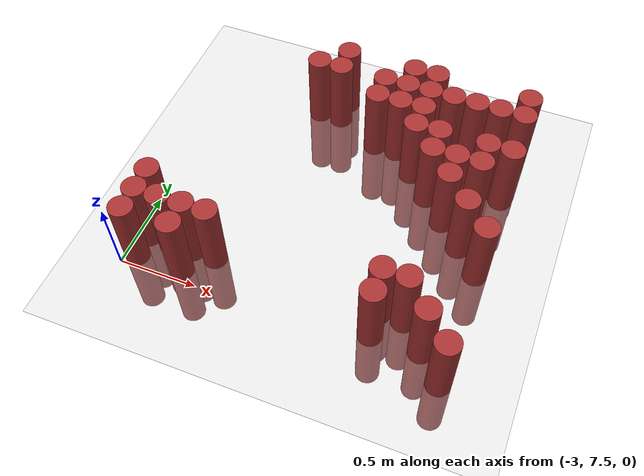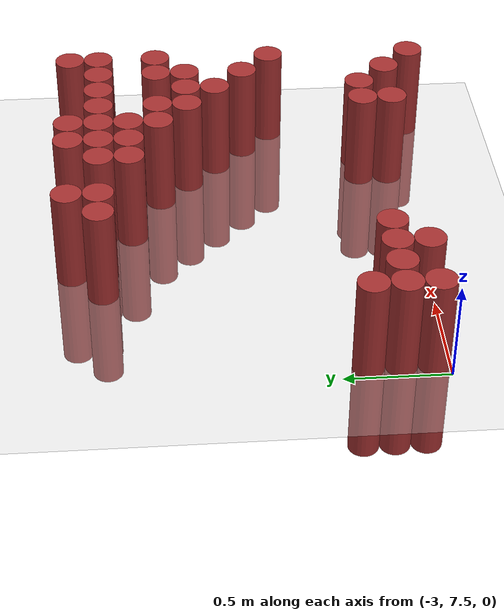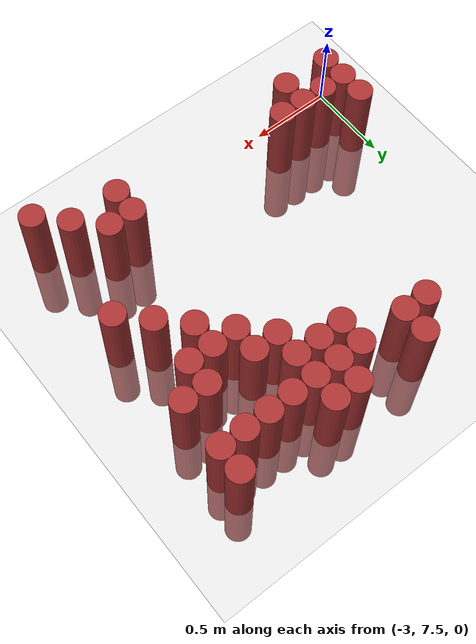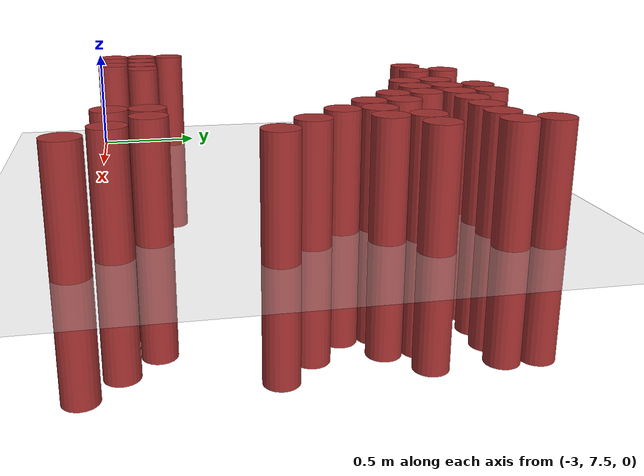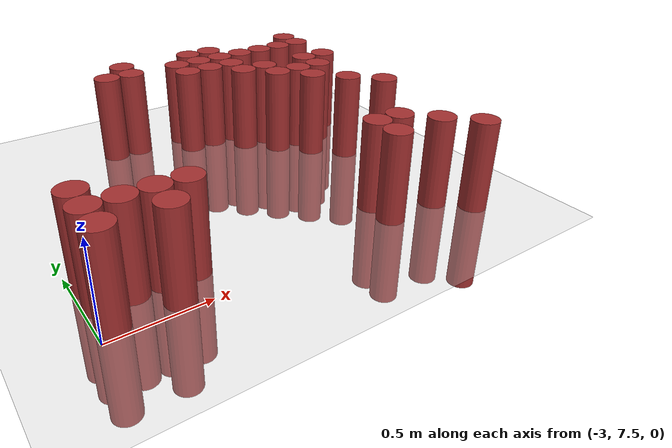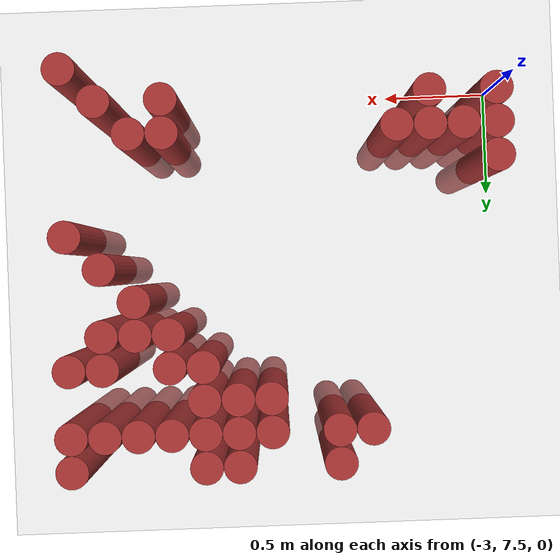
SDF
<sdf version="1.6">
 <world name="default">
  <model name="ground_plane">
   <static>1</static>
   <link name="link">
    <collision name="collision">
     <geometry><plane><normal>0 0 1</normal><size>100 100</size></plane></geometry>
     <surface><friction><ode><mu>100</mu><mu2>50</mu2></ode></friction></surface>
    </collision>
    <visual name="visual">
     <cast_shadows>0</cast_shadows>
     <geometry><plane><normal>0 0 1</normal><size>100 100</size></plane></geometry>
     <material>
      <script><uri>file://media/materials/scripts/gazebo.material</uri><name>Gazebo/Grey</name></script>
     </material>
    </visual>
   </link>
  </model>
  <model name="unit_cylinder_199">
   <static>1</static>
   <pose>-2.925000 7.575000 0.000000 0.000000 0.000000 0.000000</pose>
   <link name="link">
    <inertial>
     <mass>1</mass>
     <inertia><ixx>0.145833</ixx><ixy>0</ixy><ixz>0</ixz><iyy>0.145833</iyy><iyz>0</iyz><izz>0.125</izz></inertia>
    </inertial>
    <collision name="collision">
     <geometry><cylinder><radius>0.075000</radius><length>1</length></cylinder></geometry>
    </collision>
    <visual name="visual">
     <geometry><cylinder><radius>0.075000</radius><length>1</length></cylinder></geometry>
     <material>
      <ambient>0.648000 0.192000 0.192000 1</ambient>
      <diffuse>0.648000 0.192000 0.192000 1</diffuse>
     </material>
     <material>
      <script><name>Gazebo/Grey</name><uri>file://media/materials/scripts/gazebo.material</uri></script>
     </material>
    </visual>
    <sensor name="sensor_contact" type="contact"><contact><collision>collision</collision></contact></sensor>
   </link>
   <plugin filename="gz-sim-touchplugin-system" name="gz::sim::systems::TouchPlugin">
    <target>robot</target>
    <namespace>robot</namespace>
    <time>0.001</time>
    <enabled>true</enabled>
   </plugin>
  </model>
  <model name="unit_cylinder_200">
   <static>1</static>
   <pose>-2.925000 7.725000 0.000000 0.000000 0.000000 0.000000</pose>
   <link name="link">
    <inertial>
     <mass>1</mass>
     <inertia><ixx>0.145833</ixx><ixy>0</ixy><ixz>0</ixz><iyy>0.145833</iyy><iyz>0</iyz><izz>0.125</izz></inertia>
    </inertial>
    <collision name="collision">
     <geometry><cylinder><radius>0.075000</radius><length>1</length></cylinder></geometry>
    </collision>
    <visual name="visual">
     <geometry><cylinder><radius>0.075000</radius><length>1</length></cylinder></geometry>
     <material>
      <ambient>0.648000 0.192000 0.192000 1</ambient>
      <diffuse>0.648000 0.192000 0.192000 1</diffuse>
     </material>
     <material>
      <script><name>Gazebo/Grey</name><uri>file://media/materials/scripts/gazebo.material</uri></script>
     </material>
    </visual>
    <sensor name="sensor_contact" type="contact"><contact><collision>collision</collision></contact></sensor>
   </link>
   <plugin filename="gz-sim-touchplugin-system" name="gz::sim::systems::TouchPlugin">
    <target>robot</target>
    <namespace>robot</namespace>
    <time>0.001</time>
    <enabled>true</enabled>
   </plugin>
  </model>
  <model name="unit_cylinder_201">
   <static>1</static>
   <pose>-2.925000 7.875000 0.000000 0.000000 0.000000 0.000000</pose>
   <link name="link">
    <inertial>
     <mass>1</mass>
     <inertia><ixx>0.145833</ixx><ixy>0</ixy><ixz>0</ixz><iyy>0.145833</iyy><iyz>0</iyz><izz>0.125</izz></inertia>
    </inertial>
    <collision name="collision">
     <geometry><cylinder><radius>0.075000</radius><length>1</length></cylinder></geometry>
    </collision>
    <visual name="visual">
     <geometry><cylinder><radius>0.075000</radius><length>1</length></cylinder></geometry>
     <material>
      <ambient>0.648000 0.192000 0.192000 1</ambient>
      <diffuse>0.648000 0.192000 0.192000 1</diffuse>
     </material>
     <material>
      <script><name>Gazebo/Grey</name><uri>file://media/materials/scripts/gazebo.material</uri></script>
     </material>
    </visual>
    <sensor name="sensor_contact" type="contact"><contact><collision>collision</collision></contact></sensor>
   </link>
   <plugin filename="gz-sim-touchplugin-system" name="gz::sim::systems::TouchPlugin">
    <target>robot</target>
    <namespace>robot</namespace>
    <time>0.001</time>
    <enabled>true</enabled>
   </plugin>
  </model>
  <model name="unit_cylinder_208">
   <static>1</static>
   <pose>-2.775000 7.725000 0.000000 0.000000 0.000000 0.000000</pose>
   <link name="link">
    <inertial>
     <mass>1</mass>
     <inertia><ixx>0.145833</ixx><ixy>0</ixy><ixz>0</ixz><iyy>0.145833</iyy><iyz>0</iyz><izz>0.125</izz></inertia>
    </inertial>
    <collision name="collision">
     <geometry><cylinder><radius>0.075000</radius><length>1</length></cylinder></geometry>
    </collision>
    <visual name="visual">
     <geometry><cylinder><radius>0.075000</radius><length>1</length></cylinder></geometry>
     <material>
      <ambient>0.648000 0.192000 0.192000 1</ambient>
      <diffuse>0.648000 0.192000 0.192000 1</diffuse>
     </material>
     <material>
      <script><name>Gazebo/Grey</name><uri>file://media/materials/scripts/gazebo.material</uri></script>
     </material>
    </visual>
    <sensor name="sensor_contact" type="contact"><contact><collision>collision</collision></contact></sensor>
   </link>
   <plugin filename="gz-sim-touchplugin-system" name="gz::sim::systems::TouchPlugin">
    <target>robot</target>
    <namespace>robot</namespace>
    <time>0.001</time>
    <enabled>true</enabled>
   </plugin>
  </model>
  <model name="unit_cylinder_211">
   <static>1</static>
   <pose>-2.625000 7.575000 0.000000 0.000000 0.000000 0.000000</pose>
   <link name="link">
    <inertial>
     <mass>1</mass>
     <inertia><ixx>0.145833</ixx><ixy>0</ixy><ixz>0</ixz><iyy>0.145833</iyy><iyz>0</iyz><izz>0.125</izz></inertia>
    </inertial>
    <collision name="collision">
     <geometry><cylinder><radius>0.075000</radius><length>1</length></cylinder></geometry>
    </collision>
    <visual name="visual">
     <geometry><cylinder><radius>0.075000</radius><length>1</length></cylinder></geometry>
     <material>
      <ambient>0.648000 0.192000 0.192000 1</ambient>
      <diffuse>0.648000 0.192000 0.192000 1</diffuse>
     </material>
     <material>
      <script><name>Gazebo/Grey</name><uri>file://media/materials/scripts/gazebo.material</uri></script>
     </material>
    </visual>
    <sensor name="sensor_contact" type="contact"><contact><collision>collision</collision></contact></sensor>
   </link>
   <plugin filename="gz-sim-touchplugin-system" name="gz::sim::systems::TouchPlugin">
    <target>robot</target>
    <namespace>robot</namespace>
    <time>0.001</time>
    <enabled>true</enabled>
   </plugin>
  </model>
  <model name="unit_cylinder_212">
   <static>1</static>
   <pose>-2.625000 7.725000 0.000000 0.000000 0.000000 0.000000</pose>
   <link name="link">
    <inertial>
     <mass>1</mass>
     <inertia><ixx>0.145833</ixx><ixy>0</ixy><ixz>0</ixz><iyy>0.145833</iyy><iyz>0</iyz><izz>0.125</izz></inertia>
    </inertial>
    <collision name="collision">
     <geometry><cylinder><radius>0.075000</radius><length>1</length></cylinder></geometry>
    </collision>
    <visual name="visual">
     <geometry><cylinder><radius>0.075000</radius><length>1</length></cylinder></geometry>
     <material>
      <ambient>0.648000 0.192000 0.192000 1</ambient>
      <diffuse>0.648000 0.192000 0.192000 1</diffuse>
     </material>
     <material>
      <script><name>Gazebo/Grey</name><uri>file://media/materials/scripts/gazebo.material</uri></script>
     </material>
    </visual>
    <sensor name="sensor_contact" type="contact"><contact><collision>collision</collision></contact></sensor>
   </link>
   <plugin filename="gz-sim-touchplugin-system" name="gz::sim::systems::TouchPlugin">
    <target>robot</target>
    <namespace>robot</namespace>
    <time>0.001</time>
    <enabled>true</enabled>
   </plugin>
  </model>
  <model name="unit_cylinder_215">
   <static>1</static>
   <pose>-2.475000 7.725000 0.000000 0.000000 0.000000 0.000000</pose>
   <link name="link">
    <inertial>
     <mass>1</mass>
     <inertia><ixx>0.145833</ixx><ixy>0</ixy><ixz>0</ixz><iyy>0.145833</iyy><iyz>0</iyz><izz>0.125</izz></inertia>
    </inertial>
    <collision name="collision">
     <geometry><cylinder><radius>0.075000</radius><length>1</length></cylinder></geometry>
    </collision>
    <visual name="visual">
     <geometry><cylinder><radius>0.075000</radius><length>1</length></cylinder></geometry>
     <material>
      <ambient>0.648000 0.192000 0.192000 1</ambient>
      <diffuse>0.648000 0.192000 0.192000 1</diffuse>
     </material>
     <material>
      <script><name>Gazebo/Grey</name><uri>file://media/materials/scripts/gazebo.material</uri></script>
     </material>
    </visual>
    <sensor name="sensor_contact" type="contact"><contact><collision>collision</collision></contact></sensor>
   </link>
   <plugin filename="gz-sim-touchplugin-system" name="gz::sim::systems::TouchPlugin">
    <target>robot</target>
    <namespace>robot</namespace>
    <time>0.001</time>
    <enabled>true</enabled>
   </plugin>
  </model>
  <model name="unit_cylinder_217">
   <static>1</static>
   <pose>-2.325000 9.075000 0.000000 0.000000 0.000000 0.000000</pose>
   <link name="link">
    <inertial>
     <mass>1</mass>
     <inertia><ixx>0.145833</ixx><ixy>0</ixy><ixz>0</ixz><iyy>0.145833</iyy><iyz>0</iyz><izz>0.125</izz></inertia>
    </inertial>
    <collision name="collision">
     <geometry><cylinder><radius>0.075000</radius><length>1</length></cylinder></geometry>
    </collision>
    <visual name="visual">
     <geometry><cylinder><radius>0.075000</radius><length>1</length></cylinder></geometry>
     <material>
      <ambient>0.648000 0.192000 0.192000 1</ambient>
      <diffuse>0.648000 0.192000 0.192000 1</diffuse>
     </material>
     <material>
      <script><name>Gazebo/Grey</name><uri>file://media/materials/scripts/gazebo.material</uri></script>
     </material>
    </visual>
    <sensor name="sensor_contact" type="contact"><contact><collision>collision</collision></contact></sensor>
   </link>
   <plugin filename="gz-sim-touchplugin-system" name="gz::sim::systems::TouchPlugin">
    <target>robot</target>
    <namespace>robot</namespace>
    <time>0.001</time>
    <enabled>true</enabled>
   </plugin>
  </model>
  <model name="unit_cylinder_218">
   <static>1</static>
   <pose>-2.175000 9.075000 0.000000 0.000000 0.000000 0.000000</pose>
   <link name="link">
    <inertial>
     <mass>1</mass>
     <inertia><ixx>0.145833</ixx><ixy>0</ixy><ixz>0</ixz><iyy>0.145833</iyy><iyz>0</iyz><izz>0.125</izz></inertia>
    </inertial>
    <collision name="collision">
     <geometry><cylinder><radius>0.075000</radius><length>1</length></cylinder></geometry>
    </collision>
    <visual name="visual">
     <geometry><cylinder><radius>0.075000</radius><length>1</length></cylinder></geometry>
     <material>
      <ambient>0.648000 0.192000 0.192000 1</ambient>
      <diffuse>0.648000 0.192000 0.192000 1</diffuse>
     </material>
     <material>
      <script><name>Gazebo/Grey</name><uri>file://media/materials/scripts/gazebo.material</uri></script>
     </material>
    </visual>
    <sensor name="sensor_contact" type="contact"><contact><collision>collision</collision></contact></sensor>
   </link>
   <plugin filename="gz-sim-touchplugin-system" name="gz::sim::systems::TouchPlugin">
    <target>robot</target>
    <namespace>robot</namespace>
    <time>0.001</time>
    <enabled>true</enabled>
   </plugin>
  </model>
  <model name="unit_cylinder_219">
   <static>1</static>
   <pose>-2.175000 9.225000 0.000000 0.000000 0.000000 0.000000</pose>
   <link name="link">
    <inertial>
     <mass>1</mass>
     <inertia><ixx>0.145833</ixx><ixy>0</ixy><ixz>0</ixz><iyy>0.145833</iyy><iyz>0</iyz><izz>0.125</izz></inertia>
    </inertial>
    <collision name="collision">
     <geometry><cylinder><radius>0.075000</radius><length>1</length></cylinder></geometry>
    </collision>
    <visual name="visual">
     <geometry><cylinder><radius>0.075000</radius><length>1</length></cylinder></geometry>
     <material>
      <ambient>0.648000 0.192000 0.192000 1</ambient>
      <diffuse>0.648000 0.192000 0.192000 1</diffuse>
     </material>
     <material>
      <script><name>Gazebo/Grey</name><uri>file://media/materials/scripts/gazebo.material</uri></script>
     </material>
    </visual>
    <sensor name="sensor_contact" type="contact"><contact><collision>collision</collision></contact></sensor>
   </link>
   <plugin filename="gz-sim-touchplugin-system" name="gz::sim::systems::TouchPlugin">
    <target>robot</target>
    <namespace>robot</namespace>
    <time>0.001</time>
    <enabled>true</enabled>
   </plugin>
  </model>
  <model name="unit_cylinder_220">
   <static>1</static>
   <pose>-1.875000 8.925000 0.000000 0.000000 0.000000 0.000000</pose>
   <link name="link">
    <inertial>
     <mass>1</mass>
     <inertia><ixx>0.145833</ixx><ixy>0</ixy><ixz>0</ixz><iyy>0.145833</iyy><iyz>0</iyz><izz>0.125</izz></inertia>
    </inertial>
    <collision name="collision">
     <geometry><cylinder><radius>0.075000</radius><length>1</length></cylinder></geometry>
    </collision>
    <visual name="visual">
     <geometry><cylinder><radius>0.075000</radius><length>1</length></cylinder></geometry>
     <material>
      <ambient>0.648000 0.192000 0.192000 1</ambient>
      <diffuse>0.648000 0.192000 0.192000 1</diffuse>
     </material>
     <material>
      <script><name>Gazebo/Grey</name><uri>file://media/materials/scripts/gazebo.material</uri></script>
     </material>
    </visual>
    <sensor name="sensor_contact" type="contact"><contact><collision>collision</collision></contact></sensor>
   </link>
   <plugin filename="gz-sim-touchplugin-system" name="gz::sim::systems::TouchPlugin">
    <target>robot</target>
    <namespace>robot</namespace>
    <time>0.001</time>
    <enabled>true</enabled>
   </plugin>
  </model>
  <model name="unit_cylinder_221">
   <static>1</static>
   <pose>-1.875000 9.075000 0.000000 0.000000 0.000000 0.000000</pose>
   <link name="link">
    <inertial>
     <mass>1</mass>
     <inertia><ixx>0.145833</ixx><ixy>0</ixy><ixz>0</ixz><iyy>0.145833</iyy><iyz>0</iyz><izz>0.125</izz></inertia>
    </inertial>
    <collision name="collision">
     <geometry><cylinder><radius>0.075000</radius><length>1</length></cylinder></geometry>
    </collision>
    <visual name="visual">
     <geometry><cylinder><radius>0.075000</radius><length>1</length></cylinder></geometry>
     <material>
      <ambient>0.648000 0.192000 0.192000 1</ambient>
      <diffuse>0.648000 0.192000 0.192000 1</diffuse>
     </material>
     <material>
      <script><name>Gazebo/Grey</name><uri>file://media/materials/scripts/gazebo.material</uri></script>
     </material>
    </visual>
    <sensor name="sensor_contact" type="contact"><contact><collision>collision</collision></contact></sensor>
   </link>
   <plugin filename="gz-sim-touchplugin-system" name="gz::sim::systems::TouchPlugin">
    <target>robot</target>
    <namespace>robot</namespace>
    <time>0.001</time>
    <enabled>true</enabled>
   </plugin>
  </model>
  <model name="unit_cylinder_222">
   <static>1</static>
   <pose>-1.725000 8.925000 0.000000 0.000000 0.000000 0.000000</pose>
   <link name="link">
    <inertial>
     <mass>1</mass>
     <inertia><ixx>0.145833</ixx><ixy>0</ixy><ixz>0</ixz><iyy>0.145833</iyy><iyz>0</iyz><izz>0.125</izz></inertia>
    </inertial>
    <collision name="collision">
     <geometry><cylinder><radius>0.075000</radius><length>1</length></cylinder></geometry>
    </collision>
    <visual name="visual">
     <geometry><cylinder><radius>0.075000</radius><length>1</length></cylinder></geometry>
     <material>
      <ambient>0.648000 0.192000 0.192000 1</ambient>
      <diffuse>0.648000 0.192000 0.192000 1</diffuse>
     </material>
     <material>
      <script><name>Gazebo/Grey</name><uri>file://media/materials/scripts/gazebo.material</uri></script>
     </material>
    </visual>
    <sensor name="sensor_contact" type="contact"><contact><collision>collision</collision></contact></sensor>
   </link>
   <plugin filename="gz-sim-touchplugin-system" name="gz::sim::systems::TouchPlugin">
    <target>robot</target>
    <namespace>robot</namespace>
    <time>0.001</time>
    <enabled>true</enabled>
   </plugin>
  </model>
  <model name="unit_cylinder_223">
   <static>1</static>
   <pose>-1.725000 9.075000 0.000000 0.000000 0.000000 0.000000</pose>
   <link name="link">
    <inertial>
     <mass>1</mass>
     <inertia><ixx>0.145833</ixx><ixy>0</ixy><ixz>0</ixz><iyy>0.145833</iyy><iyz>0</iyz><izz>0.125</izz></inertia>
    </inertial>
    <collision name="collision">
     <geometry><cylinder><radius>0.075000</radius><length>1</length></cylinder></geometry>
    </collision>
    <visual name="visual">
     <geometry><cylinder><radius>0.075000</radius><length>1</length></cylinder></geometry>
     <material>
      <ambient>0.648000 0.192000 0.192000 1</ambient>
      <diffuse>0.648000 0.192000 0.192000 1</diffuse>
     </material>
     <material>
      <script><name>Gazebo/Grey</name><uri>file://media/materials/scripts/gazebo.material</uri></script>
     </material>
    </visual>
    <sensor name="sensor_contact" type="contact"><contact><collision>collision</collision></contact></sensor>
   </link>
   <plugin filename="gz-sim-touchplugin-system" name="gz::sim::systems::TouchPlugin">
    <target>robot</target>
    <namespace>robot</namespace>
    <time>0.001</time>
    <enabled>true</enabled>
   </plugin>
  </model>
  <model name="unit_cylinder_224">
   <static>1</static>
   <pose>-1.725000 9.225000 0.000000 0.000000 0.000000 0.000000</pose>
   <link name="link">
    <inertial>
     <mass>1</mass>
     <inertia><ixx>0.145833</ixx><ixy>0</ixy><ixz>0</ixz><iyy>0.145833</iyy><iyz>0</iyz><izz>0.125</izz></inertia>
    </inertial>
    <collision name="collision">
     <geometry><cylinder><radius>0.075000</radius><length>1</length></cylinder></geometry>
    </collision>
    <visual name="visual">
     <geometry><cylinder><radius>0.075000</radius><length>1</length></cylinder></geometry>
     <material>
      <ambient>0.648000 0.192000 0.192000 1</ambient>
      <diffuse>0.648000 0.192000 0.192000 1</diffuse>
     </material>
     <material>
      <script><name>Gazebo/Grey</name><uri>file://media/materials/scripts/gazebo.material</uri></script>
     </material>
    </visual>
    <sensor name="sensor_contact" type="contact"><contact><collision>collision</collision></contact></sensor>
   </link>
   <plugin filename="gz-sim-touchplugin-system" name="gz::sim::systems::TouchPlugin">
    <target>robot</target>
    <namespace>robot</namespace>
    <time>0.001</time>
    <enabled>true</enabled>
   </plugin>
  </model>
  <model name="unit_cylinder_225">
   <static>1</static>
   <pose>-1.575000 8.775000 0.000000 0.000000 0.000000 0.000000</pose>
   <link name="link">
    <inertial>
     <mass>1</mass>
     <inertia><ixx>0.145833</ixx><ixy>0</ixy><ixz>0</ixz><iyy>0.145833</iyy><iyz>0</iyz><izz>0.125</izz></inertia>
    </inertial>
    <collision name="collision">
     <geometry><cylinder><radius>0.075000</radius><length>1</length></cylinder></geometry>
    </collision>
    <visual name="visual">
     <geometry><cylinder><radius>0.075000</radius><length>1</length></cylinder></geometry>
     <material>
      <ambient>0.648000 0.192000 0.192000 1</ambient>
      <diffuse>0.648000 0.192000 0.192000 1</diffuse>
     </material>
     <material>
      <script><name>Gazebo/Grey</name><uri>file://media/materials/scripts/gazebo.material</uri></script>
     </material>
    </visual>
    <sensor name="sensor_contact" type="contact"><contact><collision>collision</collision></contact></sensor>
   </link>
   <plugin filename="gz-sim-touchplugin-system" name="gz::sim::systems::TouchPlugin">
    <target>robot</target>
    <namespace>robot</namespace>
    <time>0.001</time>
    <enabled>true</enabled>
   </plugin>
  </model>
  <model name="unit_cylinder_226">
   <static>1</static>
   <pose>-1.575000 8.925000 0.000000 0.000000 0.000000 0.000000</pose>
   <link name="link">
    <inertial>
     <mass>1</mass>
     <inertia><ixx>0.145833</ixx><ixy>0</ixy><ixz>0</ixz><iyy>0.145833</iyy><iyz>0</iyz><izz>0.125</izz></inertia>
    </inertial>
    <collision name="collision">
     <geometry><cylinder><radius>0.075000</radius><length>1</length></cylinder></geometry>
    </collision>
    <visual name="visual">
     <geometry><cylinder><radius>0.075000</radius><length>1</length></cylinder></geometry>
     <material>
      <ambient>0.648000 0.192000 0.192000 1</ambient>
      <diffuse>0.648000 0.192000 0.192000 1</diffuse>
     </material>
     <material>
      <script><name>Gazebo/Grey</name><uri>file://media/materials/scripts/gazebo.material</uri></script>
     </material>
    </visual>
    <sensor name="sensor_contact" type="contact"><contact><collision>collision</collision></contact></sensor>
   </link>
   <plugin filename="gz-sim-touchplugin-system" name="gz::sim::systems::TouchPlugin">
    <target>robot</target>
    <namespace>robot</namespace>
    <time>0.001</time>
    <enabled>true</enabled>
   </plugin>
  </model>
  <model name="unit_cylinder_227">
   <static>1</static>
   <pose>-1.575000 9.075000 0.000000 0.000000 0.000000 0.000000</pose>
   <link name="link">
    <inertial>
     <mass>1</mass>
     <inertia><ixx>0.145833</ixx><ixy>0</ixy><ixz>0</ixz><iyy>0.145833</iyy><iyz>0</iyz><izz>0.125</izz></inertia>
    </inertial>
    <collision name="collision">
     <geometry><cylinder><radius>0.075000</radius><length>1</length></cylinder></geometry>
    </collision>
    <visual name="visual">
     <geometry><cylinder><radius>0.075000</radius><length>1</length></cylinder></geometry>
     <material>
      <ambient>0.648000 0.192000 0.192000 1</ambient>
      <diffuse>0.648000 0.192000 0.192000 1</diffuse>
     </material>
     <material>
      <script><name>Gazebo/Grey</name><uri>file://media/materials/scripts/gazebo.material</uri></script>
     </material>
    </visual>
    <sensor name="sensor_contact" type="contact"><contact><collision>collision</collision></contact></sensor>
   </link>
   <plugin filename="gz-sim-touchplugin-system" name="gz::sim::systems::TouchPlugin">
    <target>robot</target>
    <namespace>robot</namespace>
    <time>0.001</time>
    <enabled>true</enabled>
   </plugin>
  </model>
  <model name="unit_cylinder_228">
   <static>1</static>
   <pose>-1.575000 9.225000 0.000000 0.000000 0.000000 0.000000</pose>
   <link name="link">
    <inertial>
     <mass>1</mass>
     <inertia><ixx>0.145833</ixx><ixy>0</ixy><ixz>0</ixz><iyy>0.145833</iyy><iyz>0</iyz><izz>0.125</izz></inertia>
    </inertial>
    <collision name="collision">
     <geometry><cylinder><radius>0.075000</radius><length>1</length></cylinder></geometry>
    </collision>
    <visual name="visual">
     <geometry><cylinder><radius>0.075000</radius><length>1</length></cylinder></geometry>
     <material>
      <ambient>0.648000 0.192000 0.192000 1</ambient>
      <diffuse>0.648000 0.192000 0.192000 1</diffuse>
     </material>
     <material>
      <script><name>Gazebo/Grey</name><uri>file://media/materials/scripts/gazebo.material</uri></script>
     </material>
    </visual>
    <sensor name="sensor_contact" type="contact"><contact><collision>collision</collision></contact></sensor>
   </link>
   <plugin filename="gz-sim-touchplugin-system" name="gz::sim::systems::TouchPlugin">
    <target>robot</target>
    <namespace>robot</namespace>
    <time>0.001</time>
    <enabled>true</enabled>
   </plugin>
  </model>
  <model name="unit_cylinder_232">
   <static>1</static>
   <pose>-1.425000 7.575000 0.000000 0.000000 0.000000 0.000000</pose>
   <link name="link">
    <inertial>
     <mass>1</mass>
     <inertia><ixx>0.145833</ixx><ixy>0</ixy><ixz>0</ixz><iyy>0.145833</iyy><iyz>0</iyz><izz>0.125</izz></inertia>
    </inertial>
    <collision name="collision">
     <geometry><cylinder><radius>0.075000</radius><length>1</length></cylinder></geometry>
    </collision>
    <visual name="visual">
     <geometry><cylinder><radius>0.075000</radius><length>1</length></cylinder></geometry>
     <material>
      <ambient>0.648000 0.192000 0.192000 1</ambient>
      <diffuse>0.648000 0.192000 0.192000 1</diffuse>
     </material>
     <material>
      <script><name>Gazebo/Grey</name><uri>file://media/materials/scripts/gazebo.material</uri></script>
     </material>
    </visual>
    <sensor name="sensor_contact" type="contact"><contact><collision>collision</collision></contact></sensor>
   </link>
   <plugin filename="gz-sim-touchplugin-system" name="gz::sim::systems::TouchPlugin">
    <target>robot</target>
    <namespace>robot</namespace>
    <time>0.001</time>
    <enabled>true</enabled>
   </plugin>
  </model>
  <model name="unit_cylinder_233">
   <static>1</static>
   <pose>-1.425000 7.725000 0.000000 0.000000 0.000000 0.000000</pose>
   <link name="link">
    <inertial>
     <mass>1</mass>
     <inertia><ixx>0.145833</ixx><ixy>0</ixy><ixz>0</ixz><iyy>0.145833</iyy><iyz>0</iyz><izz>0.125</izz></inertia>
    </inertial>
    <collision name="collision">
     <geometry><cylinder><radius>0.075000</radius><length>1</length></cylinder></geometry>
    </collision>
    <visual name="visual">
     <geometry><cylinder><radius>0.075000</radius><length>1</length></cylinder></geometry>
     <material>
      <ambient>0.648000 0.192000 0.192000 1</ambient>
      <diffuse>0.648000 0.192000 0.192000 1</diffuse>
     </material>
     <material>
      <script><name>Gazebo/Grey</name><uri>file://media/materials/scripts/gazebo.material</uri></script>
     </material>
    </visual>
    <sensor name="sensor_contact" type="contact"><contact><collision>collision</collision></contact></sensor>
   </link>
   <plugin filename="gz-sim-touchplugin-system" name="gz::sim::systems::TouchPlugin">
    <target>robot</target>
    <namespace>robot</namespace>
    <time>0.001</time>
    <enabled>true</enabled>
   </plugin>
  </model>
  <model name="unit_cylinder_234">
   <static>1</static>
   <pose>-1.425000 8.625000 0.000000 0.000000 0.000000 0.000000</pose>
   <link name="link">
    <inertial>
     <mass>1</mass>
     <inertia><ixx>0.145833</ixx><ixy>0</ixy><ixz>0</ixz><iyy>0.145833</iyy><iyz>0</iyz><izz>0.125</izz></inertia>
    </inertial>
    <collision name="collision">
     <geometry><cylinder><radius>0.075000</radius><length>1</length></cylinder></geometry>
    </collision>
    <visual name="visual">
     <geometry><cylinder><radius>0.075000</radius><length>1</length></cylinder></geometry>
     <material>
      <ambient>0.648000 0.192000 0.192000 1</ambient>
      <diffuse>0.648000 0.192000 0.192000 1</diffuse>
     </material>
     <material>
      <script><name>Gazebo/Grey</name><uri>file://media/materials/scripts/gazebo.material</uri></script>
     </material>
    </visual>
    <sensor name="sensor_contact" type="contact"><contact><collision>collision</collision></contact></sensor>
   </link>
   <plugin filename="gz-sim-touchplugin-system" name="gz::sim::systems::TouchPlugin">
    <target>robot</target>
    <namespace>robot</namespace>
    <time>0.001</time>
    <enabled>true</enabled>
   </plugin>
  </model>
  <model name="unit_cylinder_235">
   <static>1</static>
   <pose>-1.425000 8.775000 0.000000 0.000000 0.000000 0.000000</pose>
   <link name="link">
    <inertial>
     <mass>1</mass>
     <inertia><ixx>0.145833</ixx><ixy>0</ixy><ixz>0</ixz><iyy>0.145833</iyy><iyz>0</iyz><izz>0.125</izz></inertia>
    </inertial>
    <collision name="collision">
     <geometry><cylinder><radius>0.075000</radius><length>1</length></cylinder></geometry>
    </collision>
    <visual name="visual">
     <geometry><cylinder><radius>0.075000</radius><length>1</length></cylinder></geometry>
     <material>
      <ambient>0.648000 0.192000 0.192000 1</ambient>
      <diffuse>0.648000 0.192000 0.192000 1</diffuse>
     </material>
     <material>
      <script><name>Gazebo/Grey</name><uri>file://media/materials/scripts/gazebo.material</uri></script>
     </material>
    </visual>
    <sensor name="sensor_contact" type="contact"><contact><collision>collision</collision></contact></sensor>
   </link>
   <plugin filename="gz-sim-touchplugin-system" name="gz::sim::systems::TouchPlugin">
    <target>robot</target>
    <namespace>robot</namespace>
    <time>0.001</time>
    <enabled>true</enabled>
   </plugin>
  </model>
  <model name="unit_cylinder_236">
   <static>1</static>
   <pose>-1.425000 9.075000 0.000000 0.000000 0.000000 0.000000</pose>
   <link name="link">
    <inertial>
     <mass>1</mass>
     <inertia><ixx>0.145833</ixx><ixy>0</ixy><ixz>0</ixz><iyy>0.145833</iyy><iyz>0</iyz><izz>0.125</izz></inertia>
    </inertial>
    <collision name="collision">
     <geometry><cylinder><radius>0.075000</radius><length>1</length></cylinder></geometry>
    </collision>
    <visual name="visual">
     <geometry><cylinder><radius>0.075000</radius><length>1</length></cylinder></geometry>
     <material>
      <ambient>0.648000 0.192000 0.192000 1</ambient>
      <diffuse>0.648000 0.192000 0.192000 1</diffuse>
     </material>
     <material>
      <script><name>Gazebo/Grey</name><uri>file://media/materials/scripts/gazebo.material</uri></script>
     </material>
    </visual>
    <sensor name="sensor_contact" type="contact"><contact><collision>collision</collision></contact></sensor>
   </link>
   <plugin filename="gz-sim-touchplugin-system" name="gz::sim::systems::TouchPlugin">
    <target>robot</target>
    <namespace>robot</namespace>
    <time>0.001</time>
    <enabled>true</enabled>
   </plugin>
  </model>
  <model name="unit_cylinder_242">
   <static>1</static>
   <pose>-1.275000 7.725000 0.000000 0.000000 0.000000 0.000000</pose>
   <link name="link">
    <inertial>
     <mass>1</mass>
     <inertia><ixx>0.145833</ixx><ixy>0</ixy><ixz>0</ixz><iyy>0.145833</iyy><iyz>0</iyz><izz>0.125</izz></inertia>
    </inertial>
    <collision name="collision">
     <geometry><cylinder><radius>0.075000</radius><length>1</length></cylinder></geometry>
    </collision>
    <visual name="visual">
     <geometry><cylinder><radius>0.075000</radius><length>1</length></cylinder></geometry>
     <material>
      <ambient>0.648000 0.192000 0.192000 1</ambient>
      <diffuse>0.648000 0.192000 0.192000 1</diffuse>
     </material>
     <material>
      <script><name>Gazebo/Grey</name><uri>file://media/materials/scripts/gazebo.material</uri></script>
     </material>
    </visual>
    <sensor name="sensor_contact" type="contact"><contact><collision>collision</collision></contact></sensor>
   </link>
   <plugin filename="gz-sim-touchplugin-system" name="gz::sim::systems::TouchPlugin">
    <target>robot</target>
    <namespace>robot</namespace>
    <time>0.001</time>
    <enabled>true</enabled>
   </plugin>
  </model>
  <model name="unit_cylinder_243">
   <static>1</static>
   <pose>-1.275000 8.475000 0.000000 0.000000 0.000000 0.000000</pose>
   <link name="link">
    <inertial>
     <mass>1</mass>
     <inertia><ixx>0.145833</ixx><ixy>0</ixy><ixz>0</ixz><iyy>0.145833</iyy><iyz>0</iyz><izz>0.125</izz></inertia>
    </inertial>
    <collision name="collision">
     <geometry><cylinder><radius>0.075000</radius><length>1</length></cylinder></geometry>
    </collision>
    <visual name="visual">
     <geometry><cylinder><radius>0.075000</radius><length>1</length></cylinder></geometry>
     <material>
      <ambient>0.648000 0.192000 0.192000 1</ambient>
      <diffuse>0.648000 0.192000 0.192000 1</diffuse>
     </material>
     <material>
      <script><name>Gazebo/Grey</name><uri>file://media/materials/scripts/gazebo.material</uri></script>
     </material>
    </visual>
    <sensor name="sensor_contact" type="contact"><contact><collision>collision</collision></contact></sensor>
   </link>
   <plugin filename="gz-sim-touchplugin-system" name="gz::sim::systems::TouchPlugin">
    <target>robot</target>
    <namespace>robot</namespace>
    <time>0.001</time>
    <enabled>true</enabled>
   </plugin>
  </model>
  <model name="unit_cylinder_244">
   <static>1</static>
   <pose>-1.275000 8.625000 0.000000 0.000000 0.000000 0.000000</pose>
   <link name="link">
    <inertial>
     <mass>1</mass>
     <inertia><ixx>0.145833</ixx><ixy>0</ixy><ixz>0</ixz><iyy>0.145833</iyy><iyz>0</iyz><izz>0.125</izz></inertia>
    </inertial>
    <collision name="collision">
     <geometry><cylinder><radius>0.075000</radius><length>1</length></cylinder></geometry>
    </collision>
    <visual name="visual">
     <geometry><cylinder><radius>0.075000</radius><length>1</length></cylinder></geometry>
     <material>
      <ambient>0.648000 0.192000 0.192000 1</ambient>
      <diffuse>0.648000 0.192000 0.192000 1</diffuse>
     </material>
     <material>
      <script><name>Gazebo/Grey</name><uri>file://media/materials/scripts/gazebo.material</uri></script>
     </material>
    </visual>
    <sensor name="sensor_contact" type="contact"><contact><collision>collision</collision></contact></sensor>
   </link>
   <plugin filename="gz-sim-touchplugin-system" name="gz::sim::systems::TouchPlugin">
    <target>robot</target>
    <namespace>robot</namespace>
    <time>0.001</time>
    <enabled>true</enabled>
   </plugin>
  </model>
  <model name="unit_cylinder_245">
   <static>1</static>
   <pose>-1.275000 9.075000 0.000000 0.000000 0.000000 0.000000</pose>
   <link name="link">
    <inertial>
     <mass>1</mass>
     <inertia><ixx>0.145833</ixx><ixy>0</ixy><ixz>0</ixz><iyy>0.145833</iyy><iyz>0</iyz><izz>0.125</izz></inertia>
    </inertial>
    <collision name="collision">
     <geometry><cylinder><radius>0.075000</radius><length>1</length></cylinder></geometry>
    </collision>
    <visual name="visual">
     <geometry><cylinder><radius>0.075000</radius><length>1</length></cylinder></geometry>
     <material>
      <ambient>0.648000 0.192000 0.192000 1</ambient>
      <diffuse>0.648000 0.192000 0.192000 1</diffuse>
     </material>
     <material>
      <script><name>Gazebo/Grey</name><uri>file://media/materials/scripts/gazebo.material</uri></script>
     </material>
    </visual>
    <sensor name="sensor_contact" type="contact"><contact><collision>collision</collision></contact></sensor>
   </link>
   <plugin filename="gz-sim-touchplugin-system" name="gz::sim::systems::TouchPlugin">
    <target>robot</target>
    <namespace>robot</namespace>
    <time>0.001</time>
    <enabled>true</enabled>
   </plugin>
  </model>
  <model name="unit_cylinder_247">
   <static>1</static>
   <pose>-1.125000 7.575000 0.000000 0.000000 0.000000 0.000000</pose>
   <link name="link">
    <inertial>
     <mass>1</mass>
     <inertia><ixx>0.145833</ixx><ixy>0</ixy><ixz>0</ixz><iyy>0.145833</iyy><iyz>0</iyz><izz>0.125</izz></inertia>
    </inertial>
    <collision name="collision">
     <geometry><cylinder><radius>0.075000</radius><length>1</length></cylinder></geometry>
    </collision>
    <visual name="visual">
     <geometry><cylinder><radius>0.075000</radius><length>1</length></cylinder></geometry>
     <material>
      <ambient>0.648000 0.192000 0.192000 1</ambient>
      <diffuse>0.648000 0.192000 0.192000 1</diffuse>
     </material>
     <material>
      <script><name>Gazebo/Grey</name><uri>file://media/materials/scripts/gazebo.material</uri></script>
     </material>
    </visual>
    <sensor name="sensor_contact" type="contact"><contact><collision>collision</collision></contact></sensor>
   </link>
   <plugin filename="gz-sim-touchplugin-system" name="gz::sim::systems::TouchPlugin">
    <target>robot</target>
    <namespace>robot</namespace>
    <time>0.001</time>
    <enabled>true</enabled>
   </plugin>
  </model>
  <model name="unit_cylinder_248">
   <static>1</static>
   <pose>-1.125000 8.325000 0.000000 0.000000 0.000000 0.000000</pose>
   <link name="link">
    <inertial>
     <mass>1</mass>
     <inertia><ixx>0.145833</ixx><ixy>0</ixy><ixz>0</ixz><iyy>0.145833</iyy><iyz>0</iyz><izz>0.125</izz></inertia>
    </inertial>
    <collision name="collision">
     <geometry><cylinder><radius>0.075000</radius><length>1</length></cylinder></geometry>
    </collision>
    <visual name="visual">
     <geometry><cylinder><radius>0.075000</radius><length>1</length></cylinder></geometry>
     <material>
      <ambient>0.648000 0.192000 0.192000 1</ambient>
      <diffuse>0.648000 0.192000 0.192000 1</diffuse>
     </material>
     <material>
      <script><name>Gazebo/Grey</name><uri>file://media/materials/scripts/gazebo.material</uri></script>
     </material>
    </visual>
    <sensor name="sensor_contact" type="contact"><contact><collision>collision</collision></contact></sensor>
   </link>
   <plugin filename="gz-sim-touchplugin-system" name="gz::sim::systems::TouchPlugin">
    <target>robot</target>
    <namespace>robot</namespace>
    <time>0.001</time>
    <enabled>true</enabled>
   </plugin>
  </model>
  <model name="unit_cylinder_249">
   <static>1</static>
   <pose>-1.125000 8.625000 0.000000 0.000000 0.000000 0.000000</pose>
   <link name="link">
    <inertial>
     <mass>1</mass>
     <inertia><ixx>0.145833</ixx><ixy>0</ixy><ixz>0</ixz><iyy>0.145833</iyy><iyz>0</iyz><izz>0.125</izz></inertia>
    </inertial>
    <collision name="collision">
     <geometry><cylinder><radius>0.075000</radius><length>1</length></cylinder></geometry>
    </collision>
    <visual name="visual">
     <geometry><cylinder><radius>0.075000</radius><length>1</length></cylinder></geometry>
     <material>
      <ambient>0.648000 0.192000 0.192000 1</ambient>
      <diffuse>0.648000 0.192000 0.192000 1</diffuse>
     </material>
     <material>
      <script><name>Gazebo/Grey</name><uri>file://media/materials/scripts/gazebo.material</uri></script>
     </material>
    </visual>
    <sensor name="sensor_contact" type="contact"><contact><collision>collision</collision></contact></sensor>
   </link>
   <plugin filename="gz-sim-touchplugin-system" name="gz::sim::systems::TouchPlugin">
    <target>robot</target>
    <namespace>robot</namespace>
    <time>0.001</time>
    <enabled>true</enabled>
   </plugin>
  </model>
  <model name="unit_cylinder_250">
   <static>1</static>
   <pose>-1.125000 8.775000 0.000000 0.000000 0.000000 0.000000</pose>
   <link name="link">
    <inertial>
     <mass>1</mass>
     <inertia><ixx>0.145833</ixx><ixy>0</ixy><ixz>0</ixz><iyy>0.145833</iyy><iyz>0</iyz><izz>0.125</izz></inertia>
    </inertial>
    <collision name="collision">
     <geometry><cylinder><radius>0.075000</radius><length>1</length></cylinder></geometry>
    </collision>
    <visual name="visual">
     <geometry><cylinder><radius>0.075000</radius><length>1</length></cylinder></geometry>
     <material>
      <ambient>0.648000 0.192000 0.192000 1</ambient>
      <diffuse>0.648000 0.192000 0.192000 1</diffuse>
     </material>
     <material>
      <script><name>Gazebo/Grey</name><uri>file://media/materials/scripts/gazebo.material</uri></script>
     </material>
    </visual>
    <sensor name="sensor_contact" type="contact"><contact><collision>collision</collision></contact></sensor>
   </link>
   <plugin filename="gz-sim-touchplugin-system" name="gz::sim::systems::TouchPlugin">
    <target>robot</target>
    <namespace>robot</namespace>
    <time>0.001</time>
    <enabled>true</enabled>
   </plugin>
  </model>
  <model name="unit_cylinder_251">
   <static>1</static>
   <pose>-1.125000 9.075000 0.000000 0.000000 0.000000 0.000000</pose>
   <link name="link">
    <inertial>
     <mass>1</mass>
     <inertia><ixx>0.145833</ixx><ixy>0</ixy><ixz>0</ixz><iyy>0.145833</iyy><iyz>0</iyz><izz>0.125</izz></inertia>
    </inertial>
    <collision name="collision">
     <geometry><cylinder><radius>0.075000</radius><length>1</length></cylinder></geometry>
    </collision>
    <visual name="visual">
     <geometry><cylinder><radius>0.075000</radius><length>1</length></cylinder></geometry>
     <material>
      <ambient>0.648000 0.192000 0.192000 1</ambient>
      <diffuse>0.648000 0.192000 0.192000 1</diffuse>
     </material>
     <material>
      <script><name>Gazebo/Grey</name><uri>file://media/materials/scripts/gazebo.material</uri></script>
     </material>
    </visual>
    <sensor name="sensor_contact" type="contact"><contact><collision>collision</collision></contact></sensor>
   </link>
   <plugin filename="gz-sim-touchplugin-system" name="gz::sim::systems::TouchPlugin">
    <target>robot</target>
    <namespace>robot</namespace>
    <time>0.001</time>
    <enabled>true</enabled>
   </plugin>
  </model>
  <model name="unit_cylinder_255">
   <static>1</static>
   <pose>-0.975000 7.425000 0.000000 0.000000 0.000000 0.000000</pose>
   <link name="link">
    <inertial>
     <mass>1</mass>
     <inertia><ixx>0.145833</ixx><ixy>0</ixy><ixz>0</ixz><iyy>0.145833</iyy><iyz>0</iyz><izz>0.125</izz></inertia>
    </inertial>
    <collision name="collision">
     <geometry><cylinder><radius>0.075000</radius><length>1</length></cylinder></geometry>
    </collision>
    <visual name="visual">
     <geometry><cylinder><radius>0.075000</radius><length>1</length></cylinder></geometry>
     <material>
      <ambient>0.648000 0.192000 0.192000 1</ambient>
      <diffuse>0.648000 0.192000 0.192000 1</diffuse>
     </material>
     <material>
      <script><name>Gazebo/Grey</name><uri>file://media/materials/scripts/gazebo.material</uri></script>
     </material>
    </visual>
    <sensor name="sensor_contact" type="contact"><contact><collision>collision</collision></contact></sensor>
   </link>
   <plugin filename="gz-sim-touchplugin-system" name="gz::sim::systems::TouchPlugin">
    <target>robot</target>
    <namespace>robot</namespace>
    <time>0.001</time>
    <enabled>true</enabled>
   </plugin>
  </model>
  <model name="unit_cylinder_256">
   <static>1</static>
   <pose>-0.975000 8.175000 0.000000 0.000000 0.000000 0.000000</pose>
   <link name="link">
    <inertial>
     <mass>1</mass>
     <inertia><ixx>0.145833</ixx><ixy>0</ixy><ixz>0</ixz><iyy>0.145833</iyy><iyz>0</iyz><izz>0.125</izz></inertia>
    </inertial>
    <collision name="collision">
     <geometry><cylinder><radius>0.075000</radius><length>1</length></cylinder></geometry>
    </collision>
    <visual name="visual">
     <geometry><cylinder><radius>0.075000</radius><length>1</length></cylinder></geometry>
     <material>
      <ambient>0.648000 0.192000 0.192000 1</ambient>
      <diffuse>0.648000 0.192000 0.192000 1</diffuse>
     </material>
     <material>
      <script><name>Gazebo/Grey</name><uri>file://media/materials/scripts/gazebo.material</uri></script>
     </material>
    </visual>
    <sensor name="sensor_contact" type="contact"><contact><collision>collision</collision></contact></sensor>
   </link>
   <plugin filename="gz-sim-touchplugin-system" name="gz::sim::systems::TouchPlugin">
    <target>robot</target>
    <namespace>robot</namespace>
    <time>0.001</time>
    <enabled>true</enabled>
   </plugin>
  </model>
  <model name="unit_cylinder_257">
   <static>1</static>
   <pose>-0.975000 8.775000 0.000000 0.000000 0.000000 0.000000</pose>
   <link name="link">
    <inertial>
     <mass>1</mass>
     <inertia><ixx>0.145833</ixx><ixy>0</ixy><ixz>0</ixz><iyy>0.145833</iyy><iyz>0</iyz><izz>0.125</izz></inertia>
    </inertial>
    <collision name="collision">
     <geometry><cylinder><radius>0.075000</radius><length>1</length></cylinder></geometry>
    </collision>
    <visual name="visual">
     <geometry><cylinder><radius>0.075000</radius><length>1</length></cylinder></geometry>
     <material>
      <ambient>0.648000 0.192000 0.192000 1</ambient>
      <diffuse>0.648000 0.192000 0.192000 1</diffuse>
     </material>
     <material>
      <script><name>Gazebo/Grey</name><uri>file://media/materials/scripts/gazebo.material</uri></script>
     </material>
    </visual>
    <sensor name="sensor_contact" type="contact"><contact><collision>collision</collision></contact></sensor>
   </link>
   <plugin filename="gz-sim-touchplugin-system" name="gz::sim::systems::TouchPlugin">
    <target>robot</target>
    <namespace>robot</namespace>
    <time>0.001</time>
    <enabled>true</enabled>
   </plugin>
  </model>
  <model name="unit_cylinder_258">
   <static>1</static>
   <pose>-0.975000 9.075000 0.000000 0.000000 0.000000 0.000000</pose>
   <link name="link">
    <inertial>
     <mass>1</mass>
     <inertia><ixx>0.145833</ixx><ixy>0</ixy><ixz>0</ixz><iyy>0.145833</iyy><iyz>0</iyz><izz>0.125</izz></inertia>
    </inertial>
    <collision name="collision">
     <geometry><cylinder><radius>0.075000</radius><length>1</length></cylinder></geometry>
    </collision>
    <visual name="visual">
     <geometry><cylinder><radius>0.075000</radius><length>1</length></cylinder></geometry>
     <material>
      <ambient>0.648000 0.192000 0.192000 1</ambient>
      <diffuse>0.648000 0.192000 0.192000 1</diffuse>
     </material>
     <material>
      <script><name>Gazebo/Grey</name><uri>file://media/materials/scripts/gazebo.material</uri></script>
     </material>
    </visual>
    <sensor name="sensor_contact" type="contact"><contact><collision>collision</collision></contact></sensor>
   </link>
   <plugin filename="gz-sim-touchplugin-system" name="gz::sim::systems::TouchPlugin">
    <target>robot</target>
    <namespace>robot</namespace>
    <time>0.001</time>
    <enabled>true</enabled>
   </plugin>
  </model>
  <model name="unit_cylinder_259">
   <static>1</static>
   <pose>-0.975000 9.225000 0.000000 0.000000 0.000000 0.000000</pose>
   <link name="link">
    <inertial>
     <mass>1</mass>
     <inertia><ixx>0.145833</ixx><ixy>0</ixy><ixz>0</ixz><iyy>0.145833</iyy><iyz>0</iyz><izz>0.125</izz></inertia>
    </inertial>
    <collision name="collision">
     <geometry><cylinder><radius>0.075000</radius><length>1</length></cylinder></geometry>
    </collision>
    <visual name="visual">
     <geometry><cylinder><radius>0.075000</radius><length>1</length></cylinder></geometry>
     <material>
      <ambient>0.648000 0.192000 0.192000 1</ambient>
      <diffuse>0.648000 0.192000 0.192000 1</diffuse>
     </material>
     <material>
      <script><name>Gazebo/Grey</name><uri>file://media/materials/scripts/gazebo.material</uri></script>
     </material>
    </visual>
    <sensor name="sensor_contact" type="contact"><contact><collision>collision</collision></contact></sensor>
   </link>
   <plugin filename="gz-sim-touchplugin-system" name="gz::sim::systems::TouchPlugin">
    <target>robot</target>
    <namespace>robot</namespace>
    <time>0.001</time>
    <enabled>true</enabled>
   </plugin>
  </model>
 </world>
</sdf>
